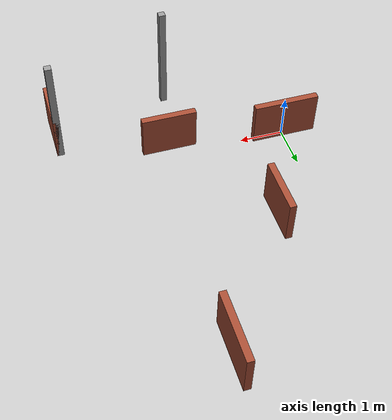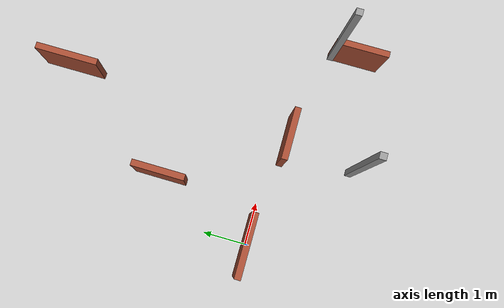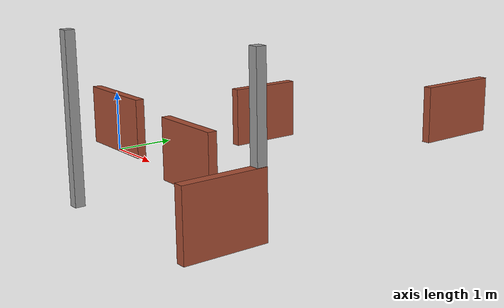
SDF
<?xml version='1.0'?>
<sdf version='1.6'>
  <model name='hideandseek2.0'>
    <pose frame=''>2.202 1.975 0 0 -0 0</pose>
    <link name='Wall_11'>
      <collision name='Wall_11_Collision'>
        <geometry>
          <box>
            <size>1.25 0.15 1</size>
          </box>
        </geometry>
        <pose frame=''>0 0 0.5 0 -0 0</pose>
      </collision>
      <visual name='Wall_11_Visual'>
        <pose frame=''>0 0 0.5 0 -0 0</pose>
        <geometry>
          <box>
            <size>1.25 0.15 1</size>
          </box>
        </geometry>
        <material>
          <script>
            <uri>file://media/materials/scripts/gazebo.material</uri>
            <name>Gazebo/Bricks</name>
          </script>
          <ambient>1 1 1 1</ambient>
        </material>
        <meta>
          <layer>0</layer>
        </meta>
      </visual>
      <pose frame=''>0.458 -2.255 0 0 -0 3.14159</pose>
    </link>
    <link name='Wall_13'>
      <collision name='Wall_13_Collision'>
        <geometry>
          <box>
            <size>0.15 0.15 2.5</size>
          </box>
        </geometry>
        <pose frame=''>0 0 1.25 0 -0 0</pose>
      </collision>
      <visual name='Wall_13_Visual'>
        <pose frame=''>0 0 1.25 0 -0 0</pose>
        <geometry>
          <box>
            <size>0.15 0.15 2.5</size>
          </box>
        </geometry>
        <material>
          <script>
            <uri>file://media/materials/scripts/gazebo.material</uri>
            <name>Gazebo/Grey</name>
          </script>
          <ambient>0 0 0 1</ambient>
        </material>
        <meta>
          <layer>0</layer>
        </meta>
      </visual>
      <pose frame=''>0.130628 -3.915 0 0 -0 0</pose>
    </link>
    <link name='Wall_14'>
      <collision name='Wall_14_Collision'>
        <geometry>
          <box>
            <size>1.25 0.15 1</size>
          </box>
        </geometry>
        <pose frame=''>0 0 0.5 0 -0 0</pose>
      </collision>
      <visual name='Wall_14_Visual'>
        <pose frame=''>0 0 0.5 0 -0 0</pose>
        <geometry>
          <box>
            <size>1.25 0.15 1</size>
          </box>
        </geometry>
        <material>
          <script>
            <uri>file://media/materials/scripts/gazebo.material</uri>
            <name>Gazebo/Bricks</name>
          </script>
          <ambient>1 1 1 1</ambient>
        </material>
        <meta>
          <layer>0</layer>
        </meta>
      </visual>
      <pose frame=''>2.898 -3.345 0 0 -0 1.5708</pose>
    </link>
    <link name='Wall_15'>
      <collision name='Wall_15_Collision'>
        <geometry>
          <box>
            <size>0.15 0.15 2.5</size>
          </box>
        </geometry>
        <pose frame=''>0 0 1.25 0 -0 0</pose>
      </collision>
      <visual name='Wall_15_Visual'>
        <pose frame=''>0 0 1.25 0 -0 0</pose>
        <geometry>
          <box>
            <size>0.15 0.15 2.5</size>
          </box>
        </geometry>
        <material>
          <script>
            <uri>file://media/materials/scripts/gazebo.material</uri>
            <name>Gazebo/Grey</name>
          </script>
          <ambient>1 1 1 1</ambient>
        </material>
        <meta>
          <layer>0</layer>
        </meta>
      </visual>
      <pose frame=''>2.888 -2.795 0 0 -0 0</pose>
    </link>
    <link name='Wall_17'>
      <collision name='Wall_17_Collision'>
        <geometry>
          <box>
            <size>1.5 0.15 1</size>
          </box>
        </geometry>
        <pose frame=''>0 0 0.5 0 -0 0</pose>
      </collision>
      <visual name='Wall_17_Visual'>
        <pose frame=''>0 0 0.5 0 -0 0</pose>
        <geometry>
          <box>
            <size>1.5 0.15 1</size>
          </box>
        </geometry>
        <material>
          <script>
            <uri>file://media/materials/scripts/gazebo.material</uri>
            <name>Gazebo/Bricks</name>
          </script>
          <ambient>1 1 1 1</ambient>
        </material>
        <meta>
          <layer>0</layer>
        </meta>
      </visual>
      <pose frame=''>0.818 3.24 0 0 -0 -1.5708</pose>
    </link>
    <link name='Wall_3'>
      <collision name='Wall_3_Collision'>
        <geometry>
          <box>
            <size>1.5 0.15 1</size>
          </box>
        </geometry>
        <pose frame=''>0 0 0.5 0 -0 0</pose>
      </collision>
      <visual name='Wall_3_Visual'>
        <pose frame=''>0 0 0.5 0 -0 0</pose>
        <geometry>
          <box>
            <size>1.5 0.15 1</size>
          </box>
        </geometry>
        <material>
          <script>
            <uri>file://media/materials/scripts/gazebo.material</uri>
            <name>Gazebo/Bricks</name>
          </script>
          <ambient>0.760784 0.662745 0.627451 1</ambient>
        </material>
        <meta>
          <layer>0</layer>
        </meta>
      </visual>
      <pose frame=''>-2.223 -1.957 0 0 -0 0</pose>
    </link>
    <link name='Wall_7'>
      <collision name='Wall_7_Collision'>
        <geometry>
          <box>
            <size>1.25 0.15 1</size>
          </box>
        </geometry>
        <pose frame=''>0 0 0.5 0 -0 0</pose>
      </collision>
      <visual name='Wall_7_Visual'>
        <pose frame=''>0 0 0.5 0 -0 0</pose>
        <geometry>
          <box>
            <size>1.25 0.15 1</size>
          </box>
        </geometry>
        <material>
          <script>
            <uri>file://media/materials/scripts/gazebo.material</uri>
            <name>Gazebo/Bricks</name>
          </script>
          <ambient>1 1 1 1</ambient>
        </material>
        <meta>
          <layer>0</layer>
        </meta>
      </visual>
      <pose frame=''>-1.182 0.385 0 0 -0 1.5708</pose>
    </link>
    <static>1</static>
  </model>
</sdf>
